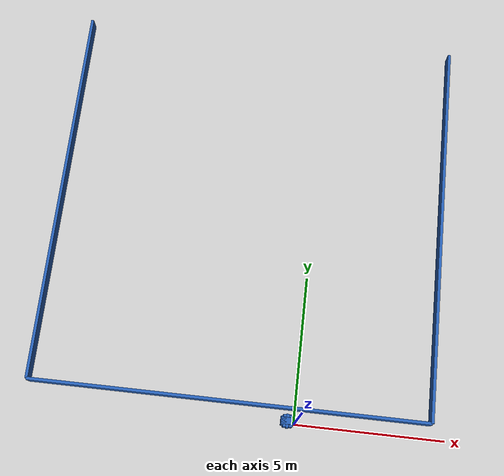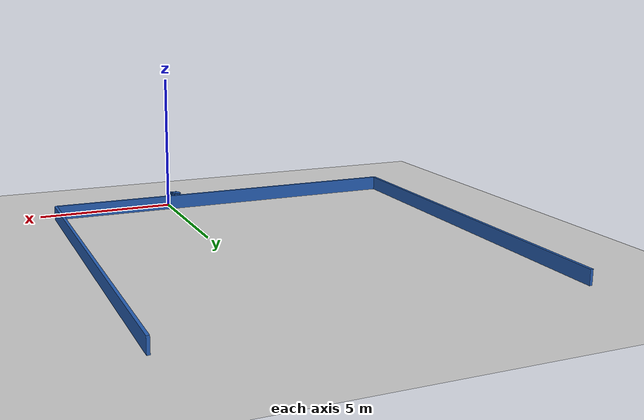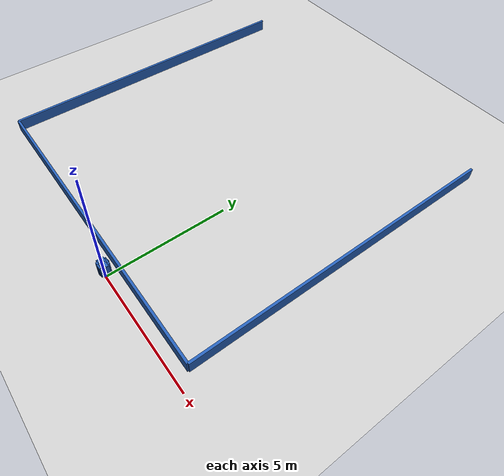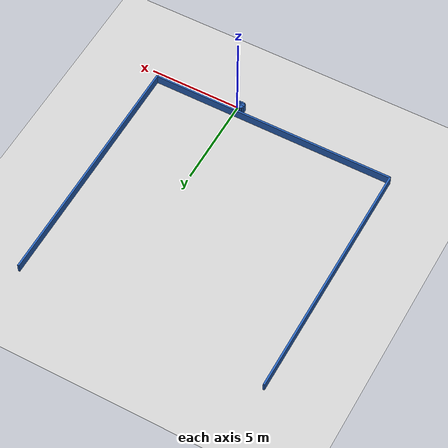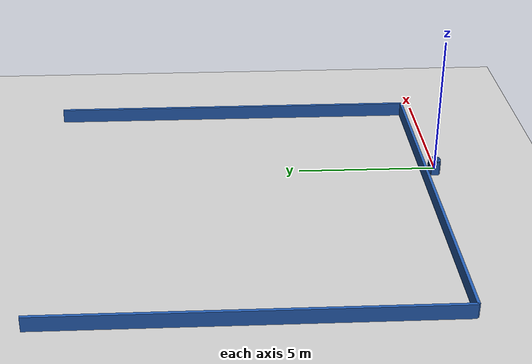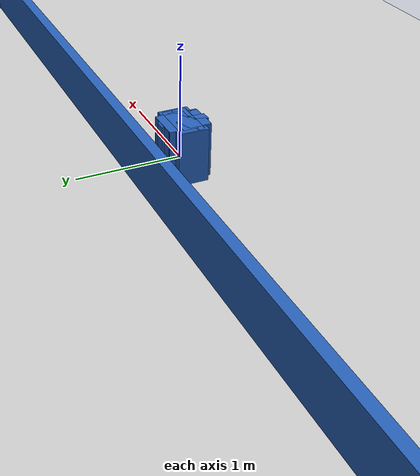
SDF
<?xml version="1.0" ?>
    <sdf version="1.5">
      <world name="default">
        <!-- A global light source -->
        <include>
          <uri>model://sun</uri>
        </include>
        <!-- A ground plane -->
        <include>
          <uri>model://ground_plane</uri>
        </include>

    <model name='libopen_space_final_T2B_119_99'>
      <static>1</static>
      <pose frame=''>-0.225000 0.075000 0.000000 0.000000 0.000000 0.000000</pose>
      <link name='link'>
        <inertial>
          <mass>1</mass>
          <inertia>
            <ixx>0.145833</ixx>
            <ixy>0</ixy>
            <ixz>0</ixz>
            <iyy>0.145833</iyy>
            <iyz>0</iyz>
            <izz>0.125</izz>
          </inertia>
        </inertial>
        <collision name='collision'>
          <geometry>
            <box>
              <size>0.46 0.28 1</size>
            </box>
          </geometry>
          <max_contacts>10</max_contacts>
          <surface>
            <contact>
              <ode/>
            </contact>
            <bounce/>
            <friction>
              <torsional>
                <ode/>
              </torsional>
              <ode/>
            </friction>
          </surface>
        </collision>
        <visual name='visual'>
          <geometry>
            <box>
              <size>0.46 0.28 1</size>
            </box>
          </geometry>
	    <material>
              <ambient>0.152000 0.379000 0.720000 1</ambient>
	      <diffuse>0.152000 0.379000 0.720000 1</diffuse>
          </material>
          <material>
            <script>
              <name>Gazebo/Grey</name>
              <uri>file://media/materials/scripts/gazebo.material</uri>
            </script>
          </material>
        </visual>
        <self_collide>0</self_collide>
        <kinematic>0</kinematic>
        <gravity>1</gravity>
      </link>
      <plugin name='libopen_space_final_T2B_119_99' filename='libopen_space_final_T2B_119_99.so'/>
    </model>

    <model name='libopen_space_final_T2B_126_78'>
      <static>1</static>
      <pose frame=''>-0.225000 0.075000 0.000000 0.000000 0.000000 0.000000</pose>
      <link name='link'>
        <inertial>
          <mass>1</mass>
          <inertia>
            <ixx>0.145833</ixx>
            <ixy>0</ixy>
            <ixz>0</ixz>
            <iyy>0.145833</iyy>
            <iyz>0</iyz>
            <izz>0.125</izz>
          </inertia>
        </inertial>
        <collision name='collision'>
          <geometry>
            <box>
              <size>0.42 0.23 1</size>
            </box>
          </geometry>
          <max_contacts>10</max_contacts>
          <surface>
            <contact>
              <ode/>
            </contact>
            <bounce/>
            <friction>
              <torsional>
                <ode/>
              </torsional>
              <ode/>
            </friction>
          </surface>
        </collision>
        <visual name='visual'>
          <geometry>
            <box>
              <size>0.42 0.23 1</size>
            </box>
          </geometry>
	    <material>
              <ambient>0.152000 0.379000 0.720000 1</ambient>
	      <diffuse>0.152000 0.379000 0.720000 1</diffuse>
          </material>
          <material>
            <script>
              <name>Gazebo/Grey</name>
              <uri>file://media/materials/scripts/gazebo.material</uri>
            </script>
          </material>
        </visual>
        <self_collide>0</self_collide>
        <kinematic>0</kinematic>
        <gravity>1</gravity>
      </link>
      <plugin name='libopen_space_final_T2B_126_78' filename='libopen_space_final_T2B_126_78.so'/>
    </model>

    <model name='libopen_space_final_T2B_55_44'>
      <static>1</static>
      <pose frame=''>-0.225000 0.075000 0.000000 0.000000 0.000000 0.000000</pose>
      <link name='link'>
        <inertial>
          <mass>1</mass>
          <inertia>
            <ixx>0.145833</ixx>
            <ixy>0</ixy>
            <ixz>0</ixz>
            <iyy>0.145833</iyy>
            <iyz>0</iyz>
            <izz>0.125</izz>
          </inertia>
        </inertial>
        <collision name='collision'>
          <geometry>
            <box>
              <size>0.35 0.14 1</size>
            </box>
          </geometry>
          <max_contacts>10</max_contacts>
          <surface>
            <contact>
              <ode/>
            </contact>
            <bounce/>
            <friction>
              <torsional>
                <ode/>
              </torsional>
              <ode/>
            </friction>
          </surface>
        </collision>
        <visual name='visual'>
          <geometry>
            <box>
              <size>0.35 0.14 1</size>
            </box>
          </geometry>
	    <material>
              <ambient>0.152000 0.379000 0.720000 1</ambient>
	      <diffuse>0.152000 0.379000 0.720000 1</diffuse>
          </material>
          <material>
            <script>
              <name>Gazebo/Grey</name>
              <uri>file://media/materials/scripts/gazebo.material</uri>
            </script>
          </material>
        </visual>
        <self_collide>0</self_collide>
        <kinematic>0</kinematic>
        <gravity>1</gravity>
      </link>
      <plugin name='libopen_space_final_T2B_55_44' filename='libopen_space_final_T2B_55_44.so'/>
    </model>

    <model name='libopen_space_final_T2B_129_11'>
      <static>1</static>
      <pose frame=''>-0.225000 0.075000 0.000000 0.000000 0.000000 0.000000</pose>
      <link name='link'>
        <inertial>
          <mass>1</mass>
          <inertia>
            <ixx>0.145833</ixx>
            <ixy>0</ixy>
            <ixz>0</ixz>
            <iyy>0.145833</iyy>
            <iyz>0</iyz>
            <izz>0.125</izz>
          </inertia>
        </inertial>
        <collision name='collision'>
          <geometry>
            <box>
              <size>0.33 0.13 1</size>
            </box>
          </geometry>
          <max_contacts>10</max_contacts>
          <surface>
            <contact>
              <ode/>
            </contact>
            <bounce/>
            <friction>
              <torsional>
                <ode/>
              </torsional>
              <ode/>
            </friction>
          </surface>
        </collision>
        <visual name='visual'>
          <geometry>
            <box>
              <size>0.33 0.13 1</size>
            </box>
          </geometry>
	    <material>
              <ambient>0.152000 0.379000 0.720000 1</ambient>
	      <diffuse>0.152000 0.379000 0.720000 1</diffuse>
          </material>
          <material>
            <script>
              <name>Gazebo/Grey</name>
              <uri>file://media/materials/scripts/gazebo.material</uri>
            </script>
          </material>
        </visual>
        <self_collide>0</self_collide>
        <kinematic>0</kinematic>
        <gravity>1</gravity>
      </link>
      <plugin name='libopen_space_final_T2B_129_11' filename='libopen_space_final_T2B_129_11.so'/>
    </model>

    <model name='libopen_space_final_T2B_119_97'>
      <static>1</static>
      <pose frame=''>-0.225000 0.075000 0.000000 0.000000 0.000000 0.000000</pose>
      <link name='link'>
        <inertial>
          <mass>1</mass>
          <inertia>
            <ixx>0.145833</ixx>
            <ixy>0</ixy>
            <ixz>0</ixz>
            <iyy>0.145833</iyy>
            <iyz>0</iyz>
            <izz>0.125</izz>
          </inertia>
        </inertial>
        <collision name='collision'>
          <geometry>
            <box>
              <size>0.29 0.11 1</size>
            </box>
          </geometry>
          <max_contacts>10</max_contacts>
          <surface>
            <contact>
              <ode/>
            </contact>
            <bounce/>
            <friction>
              <torsional>
                <ode/>
              </torsional>
              <ode/>
            </friction>
          </surface>
        </collision>
        <visual name='visual'>
          <geometry>
            <box>
              <size>0.29 0.11 1</size>
            </box>
          </geometry>
	    <material>
              <ambient>0.152000 0.379000 0.720000 1</ambient>
	      <diffuse>0.152000 0.379000 0.720000 1</diffuse>
          </material>
          <material>
            <script>
              <name>Gazebo/Grey</name>
              <uri>file://media/materials/scripts/gazebo.material</uri>
            </script>
          </material>
        </visual>
        <self_collide>0</self_collide>
        <kinematic>0</kinematic>
        <gravity>1</gravity>
      </link>
      <plugin name='libopen_space_final_T2B_119_97' filename='libopen_space_final_T2B_119_97.so'/>
    </model>

    <model name='libopen_space_final_T2B_79_14'>
      <static>1</static>
      <pose frame=''>-0.225000 0.075000 0.000000 0.000000 0.000000 0.000000</pose>
      <link name='link'>
        <inertial>
          <mass>1</mass>
          <inertia>
            <ixx>0.145833</ixx>
            <ixy>0</ixy>
            <ixz>0</ixz>
            <iyy>0.145833</iyy>
            <iyz>0</iyz>
            <izz>0.125</izz>
          </inertia>
        </inertial>
        <collision name='collision'>
          <geometry>
            <box>
              <size>0.32 0.39 1</size>
            </box>
          </geometry>
          <max_contacts>10</max_contacts>
          <surface>
            <contact>
              <ode/>
            </contact>
            <bounce/>
            <friction>
              <torsional>
                <ode/>
              </torsional>
              <ode/>
            </friction>
          </surface>
        </collision>
        <visual name='visual'>
          <geometry>
            <box>
              <size>0.32 0.39 1</size>
            </box>
          </geometry>
	    <material>
              <ambient>0.152000 0.379000 0.720000 1</ambient>
	      <diffuse>0.152000 0.379000 0.720000 1</diffuse>
          </material>
          <material>
            <script>
              <name>Gazebo/Grey</name>
              <uri>file://media/materials/scripts/gazebo.material</uri>
            </script>
          </material>
        </visual>
        <self_collide>0</self_collide>
        <kinematic>0</kinematic>
        <gravity>1</gravity>
      </link>
      <plugin name='libopen_space_final_T2B_79_14' filename='libopen_space_final_T2B_79_14.so'/>
    </model>

    <model name='libopen_space_final_T2B_56_75'>
      <static>1</static>
      <pose frame=''>-0.225000 0.075000 0.000000 0.000000 0.000000 0.000000</pose>
      <link name='link'>
        <inertial>
          <mass>1</mass>
          <inertia>
            <ixx>0.145833</ixx>
            <ixy>0</ixy>
            <ixz>0</ixz>
            <iyy>0.145833</iyy>
            <iyz>0</iyz>
            <izz>0.125</izz>
          </inertia>
        </inertial>
        <collision name='collision'>
          <geometry>
            <box>
              <size>0.31 0.23 1</size>
            </box>
          </geometry>
          <max_contacts>10</max_contacts>
          <surface>
            <contact>
              <ode/>
            </contact>
            <bounce/>
            <friction>
              <torsional>
                <ode/>
              </torsional>
              <ode/>
            </friction>
          </surface>
        </collision>
        <visual name='visual'>
          <geometry>
            <box>
              <size>0.31 0.23 1</size>
            </box>
          </geometry>
	    <material>
              <ambient>0.152000 0.379000 0.720000 1</ambient>
	      <diffuse>0.152000 0.379000 0.720000 1</diffuse>
          </material>
          <material>
            <script>
              <name>Gazebo/Grey</name>
              <uri>file://media/materials/scripts/gazebo.material</uri>
            </script>
          </material>
        </visual>
        <self_collide>0</self_collide>
        <kinematic>0</kinematic>
        <gravity>1</gravity>
      </link>
      <plugin name='libopen_space_final_T2B_56_75' filename='libopen_space_final_T2B_56_75.so'/>
    </model>

    <model name='libopen_space_final_T2B_116_74'>
      <static>1</static>
      <pose frame=''>-0.225000 0.075000 0.000000 0.000000 0.000000 0.000000</pose>
      <link name='link'>
        <inertial>
          <mass>1</mass>
          <inertia>
            <ixx>0.145833</ixx>
            <ixy>0</ixy>
            <ixz>0</ixz>
            <iyy>0.145833</iyy>
            <iyz>0</iyz>
            <izz>0.125</izz>
          </inertia>
        </inertial>
        <collision name='collision'>
          <geometry>
            <box>
              <size>0.43 0.11 1</size>
            </box>
          </geometry>
          <max_contacts>10</max_contacts>
          <surface>
            <contact>
              <ode/>
            </contact>
            <bounce/>
            <friction>
              <torsional>
                <ode/>
              </torsional>
              <ode/>
            </friction>
          </surface>
        </collision>
        <visual name='visual'>
          <geometry>
            <box>
              <size>0.43 0.11 1</size>
            </box>
          </geometry>
	    <material>
              <ambient>0.152000 0.379000 0.720000 1</ambient>
	      <diffuse>0.152000 0.379000 0.720000 1</diffuse>
          </material>
          <material>
            <script>
              <name>Gazebo/Grey</name>
              <uri>file://media/materials/scripts/gazebo.material</uri>
            </script>
          </material>
        </visual>
        <self_collide>0</self_collide>
        <kinematic>0</kinematic>
        <gravity>1</gravity>
      </link>
      <plugin name='libopen_space_final_T2B_116_74' filename='libopen_space_final_T2B_116_74.so'/>
    </model>

    <model name='libopen_space_final_T2B_96_0'>
      <static>1</static>
      <pose frame=''>-0.225000 0.075000 0.000000 0.000000 0.000000 0.000000</pose>
      <link name='link'>
        <inertial>
          <mass>1</mass>
          <inertia>
            <ixx>0.145833</ixx>
            <ixy>0</ixy>
            <ixz>0</ixz>
            <iyy>0.145833</iyy>
            <iyz>0</iyz>
            <izz>0.125</izz>
          </inertia>
        </inertial>
        <collision name='collision'>
          <geometry>
            <box>
              <size>0.43 0.22 1</size>
            </box>
          </geometry>
          <max_contacts>10</max_contacts>
          <surface>
            <contact>
              <ode/>
            </contact>
            <bounce/>
            <friction>
              <torsional>
                <ode/>
              </torsional>
              <ode/>
            </friction>
          </surface>
        </collision>
        <visual name='visual'>
          <geometry>
            <box>
              <size>0.43 0.22 1</size>
            </box>
          </geometry>
	    <material>
              <ambient>0.152000 0.379000 0.720000 1</ambient>
	      <diffuse>0.152000 0.379000 0.720000 1</diffuse>
          </material>
          <material>
            <script>
              <name>Gazebo/Grey</name>
              <uri>file://media/materials/scripts/gazebo.material</uri>
            </script>
          </material>
        </visual>
        <self_collide>0</self_collide>
        <kinematic>0</kinematic>
        <gravity>1</gravity>
      </link>
      <plugin name='libopen_space_final_T2B_96_0' filename='libopen_space_final_T2B_96_0.so'/>
    </model>

    <model name='libopen_space_final_T2B_105_8'>
      <static>1</static>
      <pose frame=''>-0.225000 0.075000 0.000000 0.000000 0.000000 0.000000</pose>
      <link name='link'>
        <inertial>
          <mass>1</mass>
          <inertia>
            <ixx>0.145833</ixx>
            <ixy>0</ixy>
            <ixz>0</ixz>
            <iyy>0.145833</iyy>
            <iyz>0</iyz>
            <izz>0.125</izz>
          </inertia>
        </inertial>
        <collision name='collision'>
          <geometry>
            <box>
              <size>0.10 0.44 1</size>
            </box>
          </geometry>
          <max_contacts>10</max_contacts>
          <surface>
            <contact>
              <ode/>
            </contact>
            <bounce/>
            <friction>
              <torsional>
                <ode/>
              </torsional>
              <ode/>
            </friction>
          </surface>
        </collision>
        <visual name='visual'>
          <geometry>
            <box>
              <size>0.10 0.44 1</size>
            </box>
          </geometry>
	    <material>
              <ambient>0.152000 0.379000 0.720000 1</ambient>
	      <diffuse>0.152000 0.379000 0.720000 1</diffuse>
          </material>
          <material>
            <script>
              <name>Gazebo/Grey</name>
              <uri>file://media/materials/scripts/gazebo.material</uri>
            </script>
          </material>
        </visual>
        <self_collide>0</self_collide>
        <kinematic>0</kinematic>
        <gravity>1</gravity>
      </link>
      <plugin name='libopen_space_final_T2B_105_8' filename='libopen_space_final_T2B_105_8.so'/>
    </model>

    <model name='libopen_space_final_T2B_90_7'>
      <static>1</static>
      <pose frame=''>-0.225000 0.075000 0.000000 0.000000 0.000000 0.000000</pose>
      <link name='link'>
        <inertial>
          <mass>1</mass>
          <inertia>
            <ixx>0.145833</ixx>
            <ixy>0</ixy>
            <ixz>0</ixz>
            <iyy>0.145833</iyy>
            <iyz>0</iyz>
            <izz>0.125</izz>
          </inertia>
        </inertial>
        <collision name='collision'>
          <geometry>
            <box>
              <size>0.29 0.40 1</size>
            </box>
          </geometry>
          <max_contacts>10</max_contacts>
          <surface>
            <contact>
              <ode/>
            </contact>
            <bounce/>
            <friction>
              <torsional>
                <ode/>
              </torsional>
              <ode/>
            </friction>
          </surface>
        </collision>
        <visual name='visual'>
          <geometry>
            <box>
              <size>0.29 0.40 1</size>
            </box>
          </geometry>
	    <material>
              <ambient>0.152000 0.379000 0.720000 1</ambient>
	      <diffuse>0.152000 0.379000 0.720000 1</diffuse>
          </material>
          <material>
            <script>
              <name>Gazebo/Grey</name>
              <uri>file://media/materials/scripts/gazebo.material</uri>
            </script>
          </material>
        </visual>
        <self_collide>0</self_collide>
        <kinematic>0</kinematic>
        <gravity>1</gravity>
      </link>
      <plugin name='libopen_space_final_T2B_90_7' filename='libopen_space_final_T2B_90_7.so'/>
    </model>

        <model name='bottom_wall'>
          <static>1</static>
          <pose frame=''>-2.25 0.5 0.000000 0.000000 0.000000 1.57079632</pose>
          <link name='link'>
            <inertial>
            <mass>1</mass>
            <inertia>
              <ixx>0.145833</ixx>
              <ixy>0</ixy>
              <ixz>0</ixz>
              <iyy>0.145833</iyy>
              <iyz>0</iyz>
              <izz>0.125</izz>
            </inertia>
            </inertial>
            <collision name='collision'>
            <geometry>
              <box>
              <size>0.1 13.5 1</size>
              </box>
            </geometry>
            <max_contacts>10</max_contacts>
            <surface>
              <contact>
              <ode/>
              </contact>
              <bounce/>
              <friction>
              <torsional>
                <ode/>
              </torsional>
              <ode/>
              </friction>
            </surface>
            </collision>
            <visual name='visual'>
            <geometry>
              <box>
              <size>0.1 13.5 1</size>
              </box>
            </geometry>
            <material>
              <ambient>0.152000 0.379000 0.720000 1</ambient>
            <diffuse>0.152000 0.379000 0.720000 1</diffuse>
            </material>
            <material>
              <script>
              <name>Gazebo/Grey</name>
              <uri>file://media/materials/scripts/gazebo.material</uri>
              </script>
            </material>
            </visual>
            <self_collide>0</self_collide>
            <kinematic>0</kinematic>
            <gravity>1</gravity>
          </link>
        </model>

        <model name='left_wall'>
          <static>1</static>
          <pose frame=''>-9 7.25 0.000000 0.000000 0.000000 0.000000</pose>
          <link name='link'>
            <inertial>
            <mass>1</mass>
            <inertia>
              <ixx>0.145833</ixx>
              <ixy>0</ixy>
              <ixz>0</ixz>
              <iyy>0.145833</iyy>
              <iyz>0</iyz>
              <izz>0.125</izz>
            </inertia>
            </inertial>
            <collision name='collision'>
            <geometry>
              <box>
              <size>0.1 13.5 1</size>
              </box>
            </geometry>
            <max_contacts>10</max_contacts>
            <surface>
              <contact>
              <ode/>
              </contact>
              <bounce/>
              <friction>
              <torsional>
                <ode/>
              </torsional>
              <ode/>
              </friction>
            </surface>
            </collision>
            <visual name='visual'>
            <geometry>
              <box>
              <size>0.1 13.5 1</size>
              </box>
            </geometry>
            <material>
              <ambient>0.152000 0.379000 0.720000 1</ambient>
            <diffuse>0.152000 0.379000 0.720000 1</diffuse>
            </material>
            <material>
              <script>
              <name>Gazebo/Grey</name>
              <uri>file://media/materials/scripts/gazebo.material</uri>
              </script>
            </material>
            </visual>
            <self_collide>0</self_collide>
            <kinematic>0</kinematic>
            <gravity>1</gravity>
          </link>
        </model>

        <model name='right_wall'>
          <static>1</static>
          <pose frame=''>4.5 7.25 0.000000 0.000000 0.000000 0.000000</pose>
          <link name='link'>
            <inertial>
            <mass>1</mass>
            <inertia>
              <ixx>0.145833</ixx>
              <ixy>0</ixy>
              <ixz>0</ixz>
              <iyy>0.145833</iyy>
              <iyz>0</iyz>
              <izz>0.125</izz>
            </inertia>
            </inertial>
            <collision name='collision'>
            <geometry>
              <box>
              <size>0.1 13.5 1</size>
              </box>
            </geometry>
            <max_contacts>10</max_contacts>
            <surface>
              <contact>
              <ode/>
              </contact>
              <bounce/>
              <friction>
              <torsional>
                <ode/>
              </torsional>
              <ode/>
              </friction>
            </surface>
            </collision>
            <visual name='visual'>
            <geometry>
              <box>
              <size>0.1 13.5 1</size>
              </box>
            </geometry>
            <material>
              <ambient>0.152000 0.379000 0.720000 1</ambient>
            <diffuse>0.152000 0.379000 0.720000 1</diffuse>
            </material>
            <material>
              <script>
              <name>Gazebo/Grey</name>
              <uri>file://media/materials/scripts/gazebo.material</uri>
              </script>
            </material>
            </visual>
            <self_collide>0</self_collide>
            <kinematic>0</kinematic>
            <gravity>1</gravity>
          </link>
        </model>

      </world>
    </sdf>"
